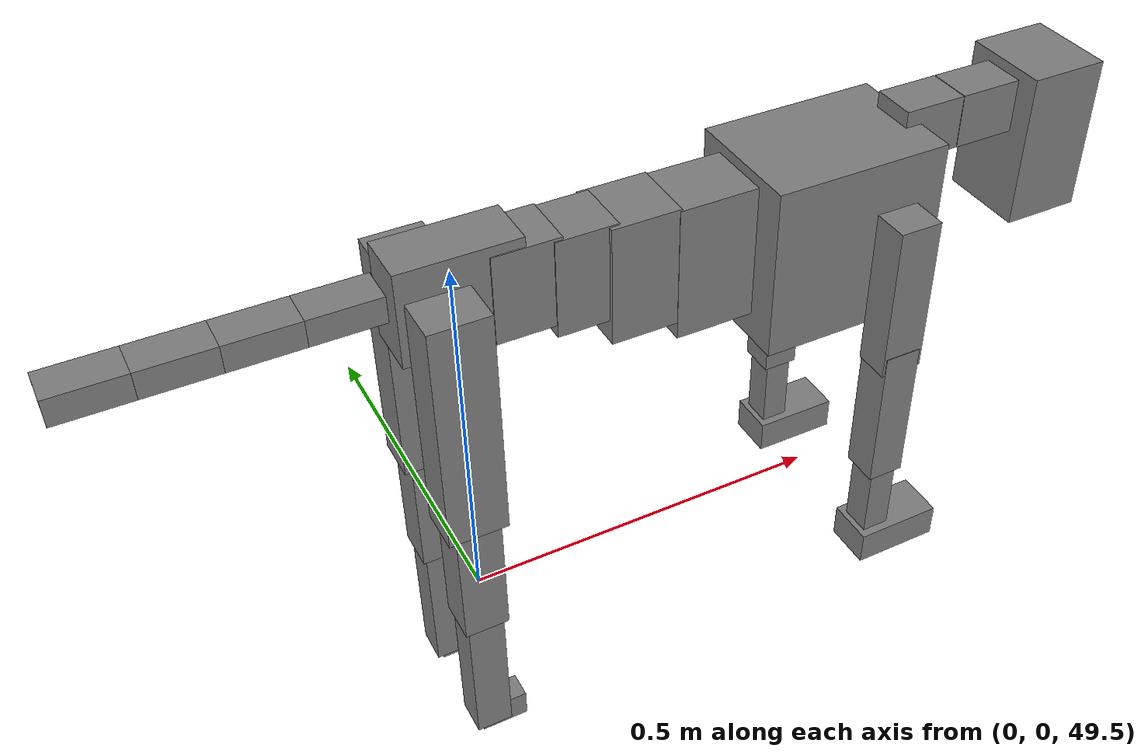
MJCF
<mujoco model="dog">

    <default>
        <joint armature="0.02" stiffness="1" damping="0.2" limited="true"/>
        <geom condim="3" friction="1 0.05 0.05" margin="0.01"/>
        <motor ctrllimited="true" ctrlrange="-1.0 1.0" forcelimited="true" gear="50"/>
    </default>

    <compiler inertiafromgeom="true" angle="radian"/>

    <option timestep="0.016" iterations="50" tolerance="1e-10" solver="Newton" jacobian="dense" cone="pyramidal"/>

    <size nconmax="20000" njmax="60000" nstack="5000000"/>
    <visual>
        <map force="0.1" zfar="30"/>
        <rgba haze="0.15 0.25 0.35 1"/>
        <quality shadowsize="2048"/>
        <global offwidth="800" offheight="800"/>
    </visual>

    <asset>
        <texture type="skybox" builtin="gradient" rgb1="0.3 0.5 0.7" rgb2="0 0 0" width="512" height="512"/>
        <texture name="texplane" type="2d" builtin="checker" rgb1=".2 .3 .4" rgb2=".1 0.15 0.2" width="512" height="512"
                 mark="cross" markrgb=".8 .8 .8"/>
        <texture name="texgeom" type="cube" builtin="flat" mark="cross" width="127" height="1278" rgb1="0.8 0.6 0.4"
                 rgb2="0.8 0.6 0.4" markrgb="1 1 1" random="0.01"/>

        <material name="matplane" reflectance="0.3" texture="texplane" texrepeat="1 1" texuniform="true"/>
        <material name="matgeom" texture="texgeom" texuniform="true" rgba="0.8 0.6 .4 1"/>
    </asset>

    <worldbody>
        <geom name="floor" pos="0 0 0" size="0 0 .25" type="plane" material="matplane" condim="3"/>

        <light directional="false" diffuse=".2 .2 .2" specular="0 0 0" pos="0 0 5" dir="0 0 -1" castshadow="false"/>
        <light mode="targetbodycom" target="torso" directional="false" diffuse=".8 .8 .8" specular="0.3 0.3 0.3"
               pos="0 0 4.0" dir="0 0 -1"/>

        <body name="root" pos="0 0 50">
            <freejoint name="root_1"/>
            <geom type="box" pos="0 0 -0.02" size="0.0774  0.0358  0.063" density="2030"/>

            <body name="spine1" pos="0.054 0 0">
                <joint name="spine1_y" axis="0 1 0" range="0 0.7" limited="true"/>
                <geom type="box" pos="0.02375 0 -0.03" size="0.04375  0.0375  0.05985" density="2030"/>

                <body name="spine2" pos="0.0612 0 0">
                    <joint name="spine2_y" axis="0 1 0" range="-0.15 0.15" limited="true"/>
                    <geom type="box" pos="0.03555  0  -0.04" size="0.04055  0.039  0.06615" density="2030"/>

                    <body name="spine3" pos="0.0730 0 0">
                        <joint name="spine3_y" axis="0 1 0" range="-0.15 0.15" limited="true"/>
                        <geom type="box" pos="0.03555  0  -0.057" size="0.04555  0.0445  0.081" density="2030"/>

                        <body name="spine4" pos="0.0780 0 0">
                            <joint name="spine4_y" axis="0 1 0" range="-0.15 0.15" limited="true"/>
                            <geom type="box" pos="0.05265  0  -0.07" size="0.05265  0.045  0.09135" density="2030"/>

                            <body name="torso" pos="0.1082 0 0">
                                <joint name="torso_y" axis="0 1 0" range="-0.15 0.15" limited="true"/>
                                <geom type="box" pos="0.11925  0  -0.085" size="0.11925  0.085  0.11745"
                                      density="2030"/>

                                <body name="neck1" pos="0.2160  0   0.0180">
                                    <joint name="neck1_y" axis="0 1 0" range="-1.2  -1" limited="true"/>
                                    <geom type="box" pos="0.0423  0  0" size="0.0423  0.03  0.036" density="2325"/>

                                    <body name="neck2" pos="0.0853  0  0">
                                        <joint name="neck2_y" axis="0 1 0" range="0.1  0" limited="true"/>
                                        <geom type="box" pos="0.0423  0  0" size="0.0423  0.03  0.036" density="2325"/>

                                        <body name="head" pos="0.0853  0  0">
                                            <joint name="head_y" axis="0 1 0" range="-0.3  -0.2" limited="true"/>
                                            <geom type="box" pos="0.0531  0  -0.055" size="0.0531  0.06  0.1044"
                                                  density="4030"/>

                                        </body>
                                    </body>
                                </body>

                                <body name="front_shoulder" pos="0.156  0   -0.0480">
                                    <joint name="front_shoulder_y" axis="0 1 0" range="-1 1.5" limited="true"/>
                                    <geom type="box" pos="0 0.13 -0.0808" size="0.0284  0.0243  0.1074" density="1158"/>
                                    <geom type="box" pos="0 -0.13 -0.0808" size="0.0284  0.0243  0.1074"
                                          density="1158"/>

                                    <body name="front_elbow" pos="0  0  -0.1616">
                                        <joint name="front_elbow_y" axis="0 1 0" range="-2 0" limited="true"/>
                                        <geom type="box" pos="0 0.13 -0.1025" size="0.0248  0.0253  0.1025"
                                              density="1081"/>
                                        <geom type="box" pos="0 -0.13 -0.1025" size="0.0248  0.0253  0.1025"
                                              density="1081"/>

                                        <body name="front_wrist" pos="0  0  -0.2050">
                                            <joint name="front_wrist_y" axis="0 1 0" range="-0.2 0" limited="true"/>
                                            <geom type="box" pos="0 0.13 -0.0587" size="0.0188  0.0209  0.0719"
                                                  density="1664"/>
                                            <geom type="box" pos="0 -0.13 -0.0587" size="0.0188  0.0209  0.0719"
                                                  density="1664"/>

                                            <body name="front_finger_end" pos="0  0  -0.1175">
                                                <joint name="front_finger_y" axis="0 1 0" range="-0.4 1"
                                                       limited="true"/>
                                                <geom type="box" pos="0.0326  0.13  -0.0083"
                                                      size="0.0597  0.0326  0.0233" density="1515"/>
                                                <geom type="box" pos="0.0326  -0.13  -0.0083"
                                                      size="0.0597  0.0326  0.0233" density="1515"/>

                                            </body>

                                        </body>
                                    </body>
                                </body>

                            </body>
                        </body>
                    </body>
                </body>
            </body>

            <body name="back_hip" pos="-0.03 0 -0.018">
                <joint name="back_hip_y" axis="0 1 0" range="-1.5 0.3" limited="true"/>
                <geom type="box" pos="0 0.07 -0.1352" size="0.0387  0.0304  0.1580" density="1154"/>
                <geom type="box" pos="0 -0.07 -0.1352" size="0.0387  0.0304  0.1580" density="1154"/>

                <body name="back_knee" pos="0  0  -0.2705">
                    <joint name="back_knee_y" axis="0 1 0" range="0 2.8" limited="true"/>
                    <geom type="box" pos="0 0.07 -0.0873" size="0.0293  0.0289  0.1028" density="1227"/>
                    <geom type="box" pos="0 -0.07 -0.0873" size="0.0293  0.0289  0.1028" density="1227"/>

                    <body name="back_ankle" pos="0  0  -0.1745">
                        <joint name="back_ankle_y" axis="0 1 0" range="-2.2 0" limited="true"/>
                        <geom type="box" pos="0 0.07 -0.1014" size="0.0242  0.0242  0.1127" density="1284"/>
                        <geom type="box" pos="0 -0.07 -0.1014" size="0.0242  0.0242  0.1127" density="1284"/>

                        <body name="back_toe_end" pos="0  0  -0.2029">
                            <joint name="back_toe_y" axis="0 1 0" range="-0.4 1" limited="true"/>
                            <geom type="box" pos="0.0174  0.07  -0.0042" size="0.0319  0.0174  0.0192" density="1515"/>
                            <geom type="box" pos="0.0174  -0.07  -0.0042" size="0.0319  0.0174  0.0192" density="1515"/>

                        </body>
                    </body>
                </body>
            </body>

            <body name="tail1" pos="-0.074 0 -0.006">
                <joint name="tail1_y" axis="0 1 0" range="-0.2 0.2" limited="true"/>
                <geom type="box" pos="-0.0536  0  0" size="0.045  0.025  0.0175" density="1587"/>

                <body name="tail2" pos="-0.09 0 0">
                    <joint name="tail2_y" axis="0 1 0" range="-0.2 0.2" limited="true"/>
                    <geom type="box" pos="-0.0536  0  0" size="0.045  0.025  0.0175" density="1587"/>

                    <body name="tail3" pos="-0.09 0 0">
                        <joint name="tail3_y" axis="0 1 0" range="-0.2 0.2" limited="true"/>
                        <geom type="box" pos="-0.0536  0  0" size="0.045  0.025  0.0175" density="1587"/>

                        <body name="tail4" pos="-0.09 0 0">
                            <joint name="tail4_y" axis="0 1 0" range="-0.2 0.2" limited="true"/>
                            <geom type="box" pos="-0.0536  0  0" size="0.045  0.025  0.0175" density="1587"/>

                        </body>
                    </body>
                </body>
            </body>
        </body>
    </worldbody>

    <actuator>
        <motor joint="spine1_y" forcerange="-150 150     "/>
        <motor joint="spine2_y" forcerange="-150 150     "/>
        <motor joint="spine3_y" forcerange="-150 150     "/>
        <motor joint="spine4_y" forcerange="-150 150     "/>
        <motor joint="torso_y" forcerange="-150 150     "/>
        <motor joint="neck1_y" forcerange="-100 100       "/>
        <motor joint="neck2_y" forcerange="-100 100       "/>
        <motor joint="head_y" forcerange="-150 150       "/>
        <motor joint="front_shoulder_y" forcerange="-148.65 113.25"/>
        <motor joint="front_elbow_y" forcerange="-120.58 163.47"/>
        <motor joint="front_wrist_y" forcerange="-112.91 54.34"/>
        <motor joint="front_finger_y" forcerange="-88.53 45.09"/>
        <motor joint="back_hip_y" forcerange="-300.89 303.98"/>
        <motor joint="back_knee_y" forcerange="-305.19 314.91"/>
        <motor joint="back_angle_y" forcerange="-135.46 152.37"/>
        <motor joint="back_toe_y" forcerange="-23.98 35.08"/>
        <motor joint="tail1_y" forcerange="-50 50     "/>
        <motor joint="tail2_y" forcerange="-50 50     "/>
        <motor joint="tail3_y" forcerange="-50 50     "/>
        <motor joint="tail4_y" forcerange="-50 50     "/>
    </actuator>
</mujoco>
